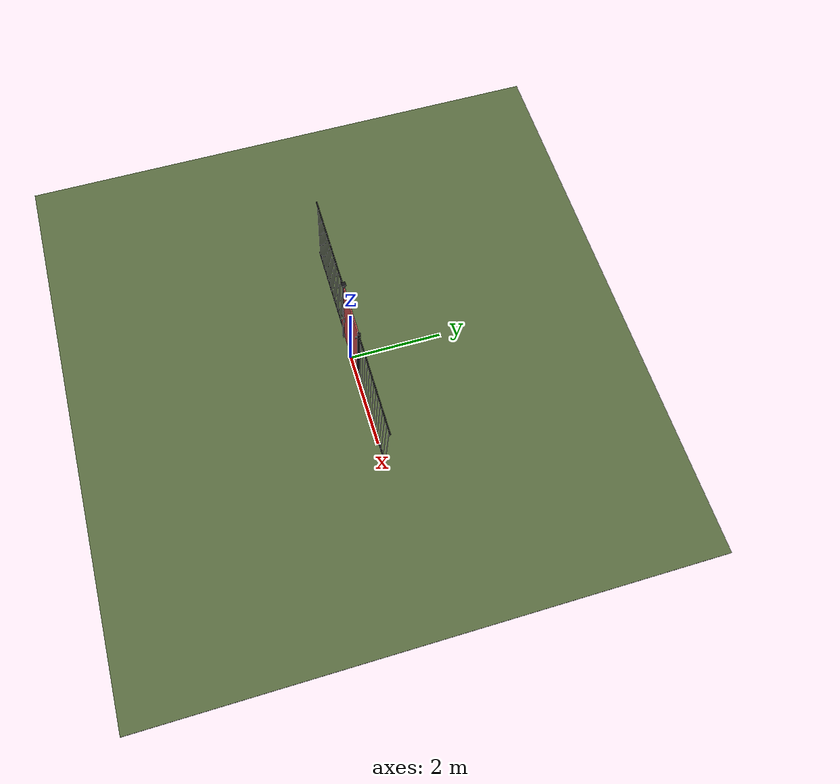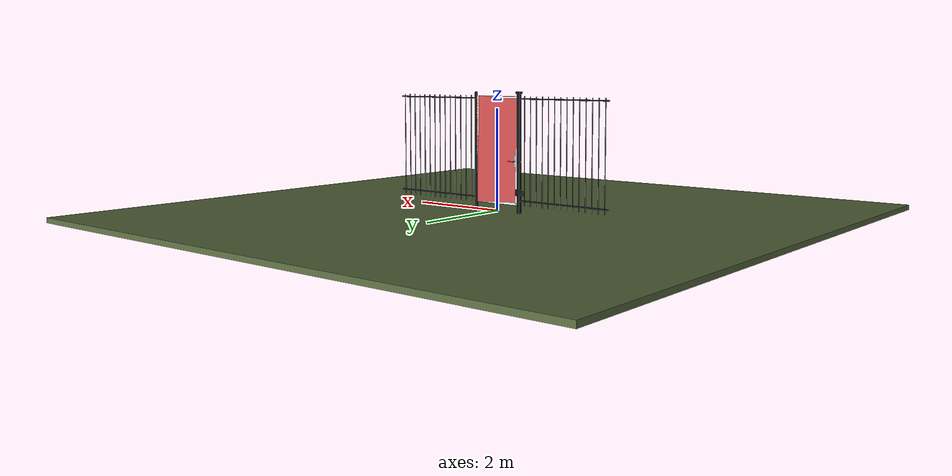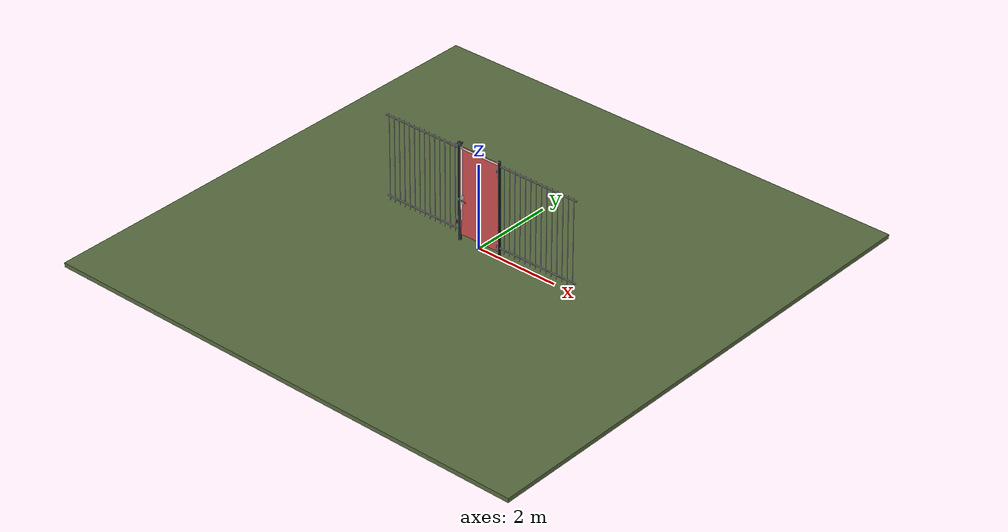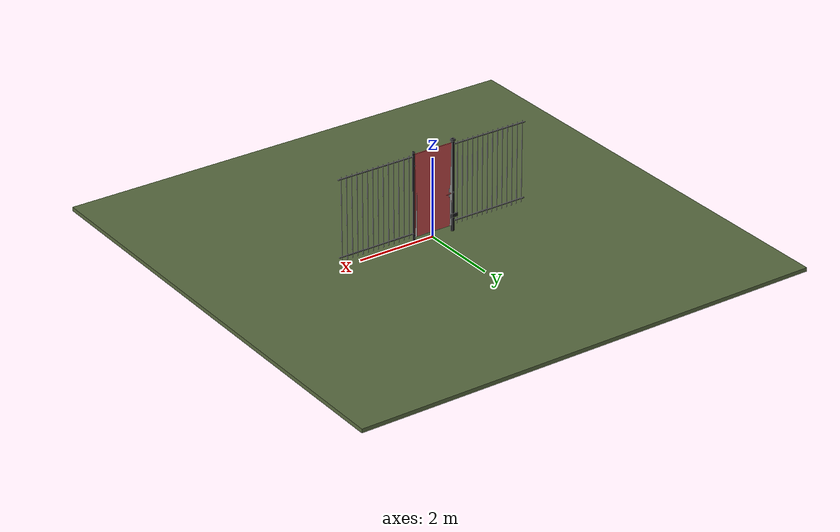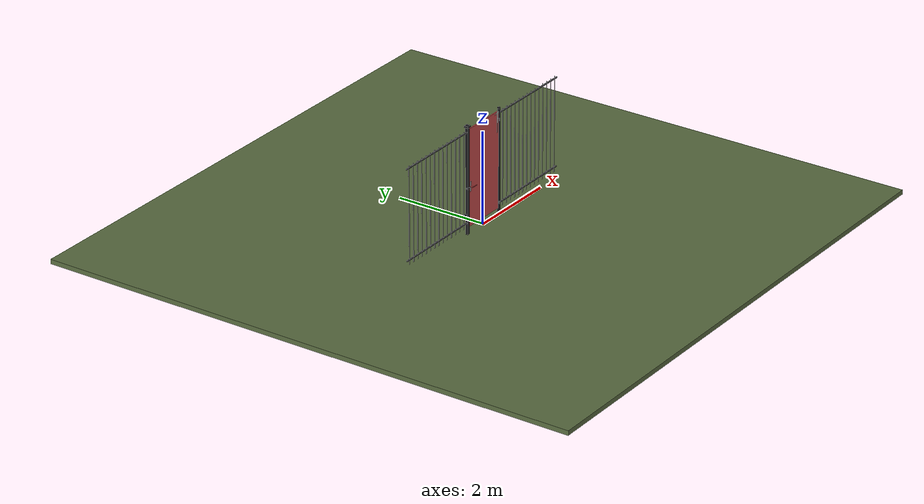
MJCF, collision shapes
<?xml version="1.0" ?>
<mujoco model="db0335_gate_swing_full">
  <compiler angle="radian" meshdir="../../hardware" texturedir="../../textures" autolimits="true" inertiafromgeom="false"/>
  <option timestep="0.002" integrator="implicitfast" cone="elliptic" impratio="10" noslip_iterations="3">
    <flag multiccd="enable"/>
  </option>
  <size memory="16M"/>
  <default>
    <geom condim="4" solref="0.005 1" solimp="0.95 0.99 0.001"/>
    <joint solreflimit="0.005 1" solimplimit="0.95 0.99 0.001"/>
    <tendon solreflimit="0.005 1"/>
    <equality solref="0.002 1"/>
  </default>
  <visual>
    <headlight ambient="0.4 0.4 0.4" diffuse="0.7 0.7 0.7" specular="0.2 0.2 0.2"/>
    <quality shadowsize="4096"/>
    <map znear="0.01" zfar="60"/>
  </visual>
  <asset>
    <mesh name="lever_f913fc5b7b" file="lever_f913fc5b7b.obj"/>
    <mesh name="strap_hinge_78d1bbb966" file="strap_hinge_78d1bbb966.obj"/>
    <material name="mat_floor" rgba="0.35 0.42 0.25 1" specular="0.2" shininess="0.15" reflectance="0"/>
    <material name="mat_wall" rgba="0.78 0.76 0.7 1" specular="0.2" shininess="0.1" reflectance="0"/>
    <material name="mat_leaf" rgba="0.93 0.93 0.91 1" specular="0.23" shininess="0.45" reflectance="0.02"/>
    <material name="mat_hinge" rgba="0.65 0.66 0.68 1" specular="0.74" shininess="0.5" reflectance="0.36"/>
    <material name="mat_op_stainless" rgba="0.75 0.76 0.77 1" specular="0.8" shininess="0.65" reflectance="0.4"/>
    <material name="mat_trim" rgba="0.85 0.66 0.3 1" specular="0.8" shininess="0.75" reflectance="0.4"/>
    <material name="mat_bolt" rgba="0.75 0.76 0.77 1" specular="0.8" shininess="0.65" reflectance="0.4"/>
    <material name="mat_frame" rgba="0.08 0.08 0.09 1" specular="0.56" shininess="0.25" reflectance="0.24"/>
    <texture name="skybox" type="skybox" builtin="gradient" rgb1="0.6 0.7 0.85" rgb2="0.9 0.92 0.95" width="256" height="256"/>
  </asset>
  <worldbody>
    <light name="sun" pos="1.5 -2.5 4" dir="-0.3 0.5 -0.8" directional="true" diffuse="0.8 0.8 0.8" specular="0.3 0.3 0.3" castshadow="true"/>
    <light name="fill" pos="-1.5 2.5 3" dir="0.3 -0.5 -0.7" directional="true" diffuse="0.35 0.35 0.4" castshadow="false"/>
    <camera name="robot_view" pos="0 -2.6125 1.7915" xyaxes="1 0 0 0 0.26963 0.962964" fovy="52"/>
    <camera name="far_view" pos="0 2.6125 1.7915" xyaxes="-1 0 0 0 -0.26963 0.962964" fovy="52"/>
    <camera name="iso" pos="-1.9855 -2.1945 2.2095" xyaxes="0.741536 -0.670913 0 0.242917 0.268487 0.932151" fovy="46"/>
    <camera name="detail_handle" pos="-0.158 -0.8675 1.28" xyaxes="0.97561 0.219512 0 -0.070934 0.315262 0.94635" fovy="38"/>
    <geom name="floor" type="box" size="6 6 0.05" pos="0 0 -0.05" material="mat_floor" group="0" contype="1" conaffinity="1" friction="0.8 0.005 0.0001" density="2400"/>
    <geom name="hinge_pintle_0" type="cylinder" size="0.008 0.02" pos="0.503 -0.05 0.274" material="mat_hinge" group="1" contype="0" conaffinity="0" density="7850"/>
    <geom name="hinge_pintle_1" type="cylinder" size="0.008 0.02" pos="0.503 -0.05 2.074" material="mat_hinge" group="1" contype="0" conaffinity="0" density="7850"/>
    <geom name="post_hinge" type="cylinder" size="0.03 1.15" pos="0.536 0 1.15" material="mat_frame" group="0" contype="1" conaffinity="1" friction="0.6 0.005 0.0001" density="800"/>
    <geom name="post_hinge_cap" type="sphere" size="0.03" pos="0.536 0 2.3" material="mat_frame" group="1" contype="0" conaffinity="0" density="800"/>
    <geom name="post_1000_wall_n" type="box" size="0.03 0.01175 0.015" pos="-0.536 0.01825 1" material="mat_frame" group="0" contype="1" conaffinity="1" friction="0.6 0.005 0.0001" density="800"/>
    <geom name="post_1000_wall_p" type="box" size="0.03 0.008 0.015" pos="-0.536 -0.0145 1" material="mat_frame" group="0" contype="1" conaffinity="1" friction="0.6 0.005 0.0001" density="800"/>
    <geom name="post_1000_ramp" type="box" size="0.03 0.016771 0.015" pos="-0.540333 -0.024084 1" quat="0.973249 0 0 -0.229753" material="mat_frame" group="0" contype="1" conaffinity="1" friction="0.12 0.005 0.0001" density="800"/>
    <geom name="post_1000_back" type="box" size="0.021 0.0065 0.015" pos="-0.545 0 1" material="mat_frame" group="0" contype="1" conaffinity="1" friction="0.6 0.005 0.0001" density="800"/>
    <geom name="post_latch_0" type="box" size="0.03 0.03 0.4925" pos="-0.536 0 0.4925" material="mat_frame" group="0" contype="1" conaffinity="1" friction="0.6 0.005 0.0001" density="800"/>
    <geom name="post_latch_1" type="box" size="0.03 0.03 0.6425" pos="-0.536 0 1.6575" material="mat_frame" group="0" contype="1" conaffinity="1" friction="0.6 0.005 0.0001" density="800"/>
    <geom name="post_latch_cap" type="box" size="0.045 0.045 0.02" pos="-0.536 0 2.32" material="mat_frame" group="1" contype="0" conaffinity="0" density="800"/>
    <geom name="gate_stop" type="box" size="0.02 0.012 0.06" pos="-0.486 0.0245 0.4" material="mat_frame" group="0" contype="1" conaffinity="1" friction="0.6 0.005 0.0001" density="800"/>
    <geom name="fence_bar_l_0" type="cylinder" size="0.008 1.05" pos="-0.666 0 1.2" material="mat_frame" group="0" contype="1" conaffinity="1" friction="0.6 0.005 0.0001" density="7850"/>
    <geom name="fence_bar_l_1" type="cylinder" size="0.008 1.05" pos="-0.806 0 1.2" material="mat_frame" group="0" contype="1" conaffinity="1" friction="0.6 0.005 0.0001" density="7850"/>
    <geom name="fence_bar_l_2" type="cylinder" size="0.008 1.05" pos="-0.946 0 1.2" material="mat_frame" group="0" contype="1" conaffinity="1" friction="0.6 0.005 0.0001" density="7850"/>
    <geom name="fence_bar_l_3" type="cylinder" size="0.008 1.05" pos="-1.086 0 1.2" material="mat_frame" group="0" contype="1" conaffinity="1" friction="0.6 0.005 0.0001" density="7850"/>
    <geom name="fence_bar_l_4" type="cylinder" size="0.008 1.05" pos="-1.226 0 1.2" material="mat_frame" group="0" contype="1" conaffinity="1" friction="0.6 0.005 0.0001" density="7850"/>
    <geom name="fence_bar_l_5" type="cylinder" size="0.008 1.05" pos="-1.366 0 1.2" material="mat_frame" group="0" contype="1" conaffinity="1" friction="0.6 0.005 0.0001" density="7850"/>
    <geom name="fence_bar_l_6" type="cylinder" size="0.008 1.05" pos="-1.506 0 1.2" material="mat_frame" group="0" contype="1" conaffinity="1" friction="0.6 0.005 0.0001" density="7850"/>
    <geom name="fence_bar_l_7" type="cylinder" size="0.008 1.05" pos="-1.646 0 1.2" material="mat_frame" group="0" contype="1" conaffinity="1" friction="0.6 0.005 0.0001" density="7850"/>
    <geom name="fence_bar_l_8" type="cylinder" size="0.008 1.05" pos="-1.786 0 1.2" material="mat_frame" group="0" contype="1" conaffinity="1" friction="0.6 0.005 0.0001" density="7850"/>
    <geom name="fence_bar_l_9" type="cylinder" size="0.008 1.05" pos="-1.926 0 1.2" material="mat_frame" group="0" contype="1" conaffinity="1" friction="0.6 0.005 0.0001" density="7850"/>
    <geom name="fence_bar_l_10" type="cylinder" size="0.008 1.05" pos="-2.066 0 1.2" material="mat_frame" group="0" contype="1" conaffinity="1" friction="0.6 0.005 0.0001" density="7850"/>
    <geom name="fence_bar_l_11" type="cylinder" size="0.008 1.05" pos="-2.206 0 1.2" material="mat_frame" group="0" contype="1" conaffinity="1" friction="0.6 0.005 0.0001" density="7850"/>
    <geom name="fence_bar_l_12" type="cylinder" size="0.008 1.05" pos="-2.346 0 1.2" material="mat_frame" group="0" contype="1" conaffinity="1" friction="0.6 0.005 0.0001" density="7850"/>
    <geom name="fence_bar_l_13" type="cylinder" size="0.008 1.05" pos="-2.486 0 1.2" material="mat_frame" group="0" contype="1" conaffinity="1" friction="0.6 0.005 0.0001" density="7850"/>
    <geom name="fence_rail_l" type="box" size="1 0.012 0.012" pos="-1.566 0 2.2" material="mat_frame" group="0" contype="1" conaffinity="1" friction="0.6 0.005 0.0001" density="7850"/>
    <geom name="fence_rail_b_l" type="box" size="1 0.012 0.012" pos="-1.566 0 0.25" material="mat_frame" group="0" contype="1" conaffinity="1" friction="0.6 0.005 0.0001" density="7850"/>
    <geom name="fence_bar_r_0" type="cylinder" size="0.008 1.05" pos="0.666 0 1.2" material="mat_frame" group="0" contype="1" conaffinity="1" friction="0.6 0.005 0.0001" density="7850"/>
    <geom name="fence_bar_r_1" type="cylinder" size="0.008 1.05" pos="0.806 0 1.2" material="mat_frame" group="0" contype="1" conaffinity="1" friction="0.6 0.005 0.0001" density="7850"/>
    <geom name="fence_bar_r_2" type="cylinder" size="0.008 1.05" pos="0.946 0 1.2" material="mat_frame" group="0" contype="1" conaffinity="1" friction="0.6 0.005 0.0001" density="7850"/>
    <geom name="fence_bar_r_3" type="cylinder" size="0.008 1.05" pos="1.086 0 1.2" material="mat_frame" group="0" contype="1" conaffinity="1" friction="0.6 0.005 0.0001" density="7850"/>
    <geom name="fence_bar_r_4" type="cylinder" size="0.008 1.05" pos="1.226 0 1.2" material="mat_frame" group="0" contype="1" conaffinity="1" friction="0.6 0.005 0.0001" density="7850"/>
    <geom name="fence_bar_r_5" type="cylinder" size="0.008 1.05" pos="1.366 0 1.2" material="mat_frame" group="0" contype="1" conaffinity="1" friction="0.6 0.005 0.0001" density="7850"/>
    <geom name="fence_bar_r_6" type="cylinder" size="0.008 1.05" pos="1.506 0 1.2" material="mat_frame" group="0" contype="1" conaffinity="1" friction="0.6 0.005 0.0001" density="7850"/>
    <geom name="fence_bar_r_7" type="cylinder" size="0.008 1.05" pos="1.646 0 1.2" material="mat_frame" group="0" contype="1" conaffinity="1" friction="0.6 0.005 0.0001" density="7850"/>
    <geom name="fence_bar_r_8" type="cylinder" size="0.008 1.05" pos="1.786 0 1.2" material="mat_frame" group="0" contype="1" conaffinity="1" friction="0.6 0.005 0.0001" density="7850"/>
    <geom name="fence_bar_r_9" type="cylinder" size="0.008 1.05" pos="1.926 0 1.2" material="mat_frame" group="0" contype="1" conaffinity="1" friction="0.6 0.005 0.0001" density="7850"/>
    <geom name="fence_bar_r_10" type="cylinder" size="0.008 1.05" pos="2.066 0 1.2" material="mat_frame" group="0" contype="1" conaffinity="1" friction="0.6 0.005 0.0001" density="7850"/>
    <geom name="fence_bar_r_11" type="cylinder" size="0.008 1.05" pos="2.206 0 1.2" material="mat_frame" group="0" contype="1" conaffinity="1" friction="0.6 0.005 0.0001" density="7850"/>
    <geom name="fence_bar_r_12" type="cylinder" size="0.008 1.05" pos="2.346 0 1.2" material="mat_frame" group="0" contype="1" conaffinity="1" friction="0.6 0.005 0.0001" density="7850"/>
    <geom name="fence_bar_r_13" type="cylinder" size="0.008 1.05" pos="2.486 0 1.2" material="mat_frame" group="0" contype="1" conaffinity="1" friction="0.6 0.005 0.0001" density="7850"/>
    <geom name="fence_rail_r" type="box" size="1 0.012 0.012" pos="1.566 0 2.2" material="mat_frame" group="0" contype="1" conaffinity="1" friction="0.6 0.005 0.0001" density="7850"/>
    <geom name="fence_rail_b_r" type="box" size="1 0.012 0.012" pos="1.566 0 0.25" material="mat_frame" group="0" contype="1" conaffinity="1" friction="0.6 0.005 0.0001" density="7850"/>
    <geom name="hinge_pintle_0_strap_0" type="box" size="0.0064 0.0065 0.016" pos="0.503 -0.036 0.274" material="mat_hinge" group="1" contype="0" conaffinity="0" density="7850"/>
    <geom name="hinge_pintle_1_strap_0" type="box" size="0.0064 0.0065 0.016" pos="0.503 -0.036 2.074" material="mat_hinge" group="1" contype="0" conaffinity="0" density="7850"/>
    <geom name="gate_stop_strap_0" type="box" size="0.0765 0.01505 0.048" pos="-0.582 0.01905 0.4" material="mat_frame" group="1" contype="0" conaffinity="0" density="7850"/>
    <site name="approach_point" pos="0 -1.5 0" quat="1 0 0 0" size="0.05" rgba="0.2 0.9 0.2 0.5" group="4"/>
    <site name="goal_point" pos="0 1.5 0" quat="1 0 0 0" size="0.05" rgba="0.2 0.9 0.2 0.5" group="4"/>
    <site name="door_plane_center" pos="0 0 1.06" quat="1 0 0 0" size="0.02" rgba="0.2 0.9 0.2 0.5" group="4"/>
    <body name="leaf" pos="0.506 0 0">
      <inertial pos="-0.491493 -0.000669 1.199448" mass="63.327062" quat="0.500964 0.499463 -0.500536 0.499035" diaginertia="5.434845037 24.188369907 29.614758301"/>
      <joint name="leaf_hinge" type="hinge" axis="0 0 1" pos="-0.003 -0.05 0" limited="true" range="0 1.745329" damping="8.37926" frictionloss="5.851184" stiffness="5" springref="-1.521308" armature="0.02"/>
      <geom name="leaf_slab_col" type="box" size="0.5 0.0125 1.05" pos="-0.503 0 1.2" material="mat_leaf" group="3" contype="1" conaffinity="1" rgba="0.8 0.3 0.3 0.25" friction="0.45 0.005 0.0001" density="1"/>
      <geom name="leaf_rail_b" type="box" size="0.5 0.0125 0.0225" pos="-0.503 0 0.1725" material="mat_leaf" group="1" contype="0" conaffinity="0" density="1"/>
      <geom name="leaf_rail_t" type="box" size="0.5 0.0125 0.0225" pos="-0.503 0 2.2275" material="mat_leaf" group="1" contype="0" conaffinity="0" density="1"/>
      <geom name="leaf_stile_h" type="box" size="0.0225 0.0125 1.05" pos="-0.0255 0 1.2" material="mat_leaf" group="1" contype="0" conaffinity="0" density="1"/>
      <geom name="leaf_stile_l" type="box" size="0.0225 0.0125 1.05" pos="-0.9805 0 1.2" material="mat_leaf" group="1" contype="0" conaffinity="0" density="1"/>
      <geom name="leaf_bar_0" type="cylinder" size="0.0095 1.005" pos="-0.113 0 1.2" material="mat_leaf" group="1" contype="0" conaffinity="0" density="1"/>
      <geom name="leaf_bar_1" type="cylinder" size="0.0095 1.005" pos="-0.243 0 1.2" material="mat_leaf" group="1" contype="0" conaffinity="0" density="1"/>
      <geom name="leaf_bar_2" type="cylinder" size="0.0095 1.005" pos="-0.373 0 1.2" material="mat_leaf" group="1" contype="0" conaffinity="0" density="1"/>
      <geom name="leaf_bar_3" type="cylinder" size="0.0095 1.005" pos="-0.503 0 1.2" material="mat_leaf" group="1" contype="0" conaffinity="0" density="1"/>
      <geom name="leaf_bar_4" type="cylinder" size="0.0095 1.005" pos="-0.633 0 1.2" material="mat_leaf" group="1" contype="0" conaffinity="0" density="1"/>
      <geom name="leaf_bar_5" type="cylinder" size="0.0095 1.005" pos="-0.763 0 1.2" material="mat_leaf" group="1" contype="0" conaffinity="0" density="1"/>
      <geom name="leaf_bar_6" type="cylinder" size="0.0095 1.005" pos="-0.893 0 1.2" material="mat_leaf" group="1" contype="0" conaffinity="0" density="1"/>
      <geom name="hinge_strap_0" type="mesh" mesh="strap_hinge_78d1bbb966" pos="-0.003 -0.0155 0.3" quat="0 0 0 1" material="mat_hinge" group="1" contype="0" conaffinity="0" density="7850"/>
      <geom name="hinge_strap_eye_0" type="cylinder" size="0.011 0.012" pos="-0.003 -0.05 0.3" material="mat_hinge" group="1" contype="0" conaffinity="0" density="7850"/>
      <geom name="hinge_strap_neck_0" type="box" size="0.012 0.02125 0.006" pos="-0.003 -0.03275 0.3" material="mat_hinge" group="1" contype="0" conaffinity="0" density="7850"/>
      <geom name="hinge_strap_1" type="mesh" mesh="strap_hinge_78d1bbb966" pos="-0.003 -0.0155 2.1" quat="0 0 0 1" material="mat_hinge" group="1" contype="0" conaffinity="0" density="7850"/>
      <geom name="hinge_strap_eye_1" type="cylinder" size="0.011 0.012" pos="-0.003 -0.05 2.1" material="mat_hinge" group="1" contype="0" conaffinity="0" density="7850"/>
      <geom name="hinge_strap_neck_1" type="box" size="0.012 0.02125 0.006" pos="-0.003 -0.03275 2.1" material="mat_hinge" group="1" contype="0" conaffinity="0" density="7850"/>
      <geom name="leaf_handle_escutcheon_n" type="box" size="0.02 0.0015 0.11" pos="-0.948 -0.014 1" material="mat_op_stainless" group="1" contype="0" conaffinity="0" density="3000"/>
      <geom name="leaf_handle_escutcheon_p" type="box" size="0.02 0.0015 0.11" pos="-0.948 0.014 1" material="mat_op_stainless" group="1" contype="0" conaffinity="0" density="3000"/>
      <geom name="leaf_latch_bolt_faceplate" type="box" size="0.0006 0.0105 0.025" pos="-1.0024 0 1" material="mat_bolt" group="1" contype="0" conaffinity="0" density="8500"/>
      <site name="leaf_edge_mid" pos="-1.003 0 1.05" quat="1 0 0 0" size="0.02" rgba="0.2 0.9 0.2 0.5" group="4"/>
      <body name="leaf_handle" pos="-0.948 0 1">
        <inertial pos="0.039865 0 0" mass="0.755789" quat="0.707107 0 0 -0.707107" diaginertia="0.001518786 0.002606793 0.004086426"/>
        <joint name="leaf_handle_hinge" type="hinge" axis="0 1 0" limited="true" range="0 0.65" damping="0.225565" frictionloss="0.051863" stiffness="1" springref="-0.503022" armature="0.01"/>
        <geom name="leaf_handle_spindle" type="cylinder" size="0.006 0.0245" pos="0 0 0" quat="0.707107 -0.707107 0 0" material="mat_op_stainless" group="1" contype="0" conaffinity="0" density="7850"/>
        <geom name="leaf_handle_lever_n" type="mesh" mesh="lever_f913fc5b7b" pos="0 -0.0125 0" quat="0 0 -0.707107 0.707107" material="mat_op_stainless" group="1" contype="0" conaffinity="0" density="3000"/>
        <geom name="leaf_handle_lever_col_n" type="capsule" size="0.0095 0.0555" pos="0.065 -0.0675 0" quat="0.707107 0 0.707107 0" material="mat_op_stainless" group="3" contype="1" conaffinity="1" rgba="0.8 0.3 0.3 0.25" friction="0.7 0.01 0.0001" density="3000"/>
        <geom name="leaf_handle_hub_col_n" type="cylinder" size="0.012 0.022" pos="0 -0.0425 0" quat="0.707107 -0.707107 0 0" material="mat_op_stainless" group="3" contype="1" conaffinity="1" rgba="0.8 0.3 0.3 0.25" friction="0.6 0.005 0.0001" density="3000"/>
        <geom name="leaf_handle_lever_p" type="mesh" mesh="lever_f913fc5b7b" pos="0 0.0125 0" quat="0 0 0.707107 0.707107" material="mat_op_stainless" group="1" contype="0" conaffinity="0" density="3000"/>
        <geom name="leaf_handle_lever_col_p" type="capsule" size="0.0095 0.0555" pos="0.065 0.0675 0" quat="0.707107 0 0.707107 0" material="mat_op_stainless" group="3" contype="1" conaffinity="1" rgba="0.8 0.3 0.3 0.25" friction="0.7 0.01 0.0001" density="3000"/>
        <geom name="leaf_handle_hub_col_p" type="cylinder" size="0.012 0.022" pos="0 0.0425 0" quat="0.707107 -0.707107 0 0" material="mat_op_stainless" group="3" contype="1" conaffinity="1" rgba="0.8 0.3 0.3 0.25" friction="0.6 0.005 0.0001" density="3000"/>
        <site name="leaf_handle_grip_n" pos="0.104 -0.0675 0" quat="1 0 0 0" size="0.012" rgba="0.2 0.9 0.2 0.5" group="4"/>
        <site name="leaf_handle_grip_p" pos="0.104 0.0675 0" quat="1 0 0 0" size="0.012" rgba="0.2 0.9 0.2 0.5" group="4"/>
      </body>
      <body name="leaf_latch_bolt" pos="-1.003 0 1">
        <inertial pos="0.008 0 0" mass="0.027149" quat="0 0 -0.707107 0.707107" diaginertia="0.000000328 0.000003943 0.000003943"/>
        <joint name="leaf_latch_bolt_slide" type="slide" axis="1 0 0" limited="true" range="0 0.014" damping="2" frictionloss="0.3" stiffness="400" springref="-0.01" armature="0.1"/>
        <geom name="leaf_latch_bolt_capsule" type="capsule" size="0.005 0.017" pos="0.008 0 0" quat="0.707107 0 -0.707107 0" material="mat_bolt" group="0" contype="1" conaffinity="1" friction="0.2 0.005 0.0001" density="8500"/>
      </body>
    </body>
  </worldbody>
  <tendon>
    <fixed name="leaf_latch_bolt_coupling" limited="true" range="0 10">
      <joint joint="leaf_latch_bolt_slide" coef="1"/>
      <joint joint="leaf_handle_hinge" coef="-0.022951"/>
    </fixed>
  </tendon>
  <sensor>
    <jointpos name="leaf_hinge_pos" joint="leaf_hinge"/>
    <jointvel name="leaf_hinge_vel" joint="leaf_hinge"/>
    <jointpos name="leaf_handle_hinge_pos" joint="leaf_handle_hinge"/>
    <jointvel name="leaf_handle_hinge_vel" joint="leaf_handle_hinge"/>
    <jointpos name="leaf_latch_bolt_slide_pos" joint="leaf_latch_bolt_slide"/>
    <jointvel name="leaf_latch_bolt_slide_vel" joint="leaf_latch_bolt_slide"/>
  </sensor>
</mujoco>
